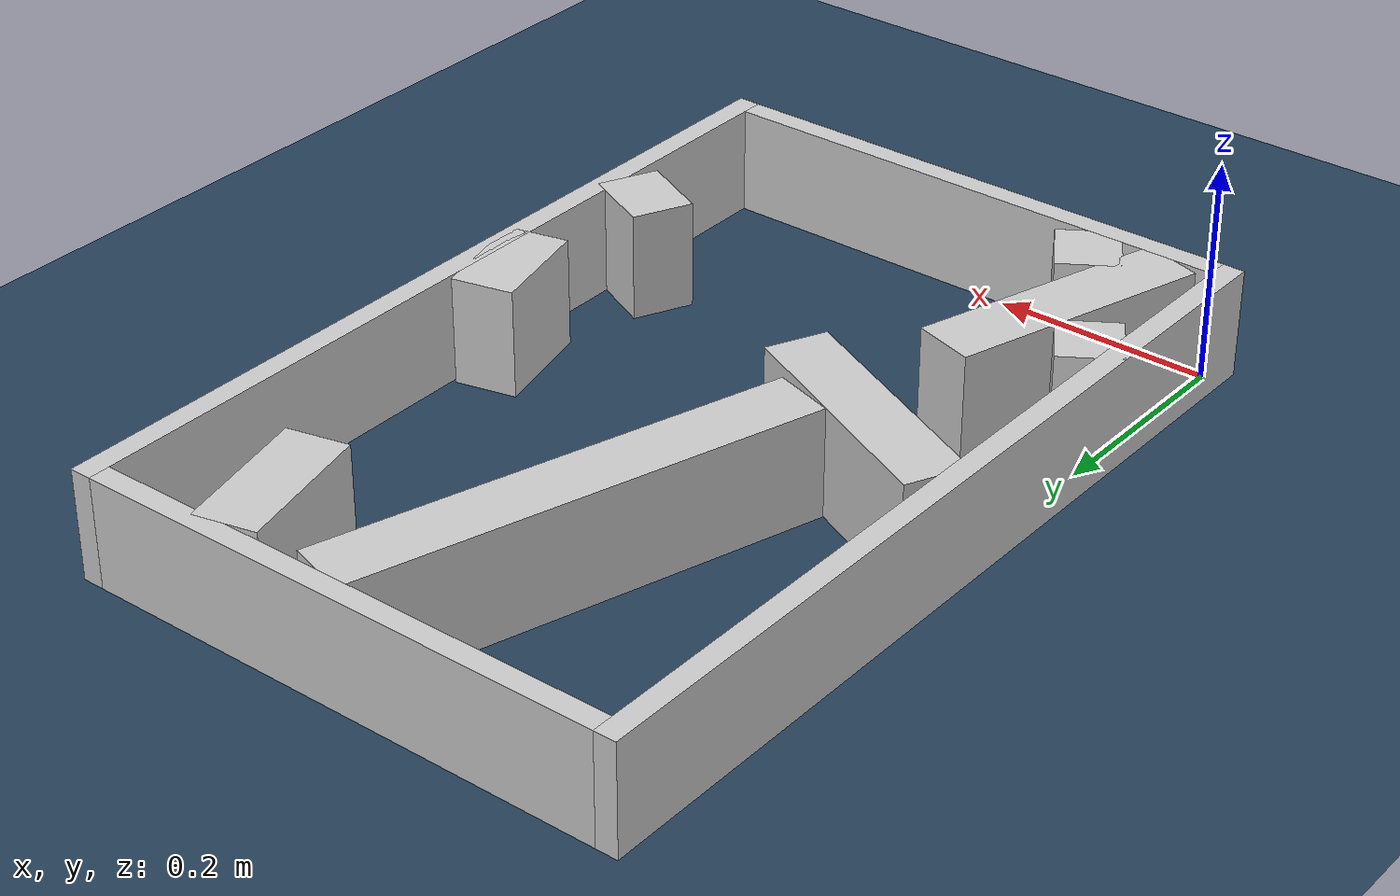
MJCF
<?xml version="1.0" ?>
<mujoco model="generated_real_template">
  <compiler angle="degree"/>
  <option timestep="0.002" integrator="implicitfast" iterations="100" cone="elliptic"/>
  <default>
    <geom density="1"/>
  </default>
  <asset>
    <texture builtin="gradient" height="3072" rgb1="0.3 0.5 0.7" rgb2="0 0 0" type="skybox" width="512"/>
    <texture builtin="checker" height="300" mark="edge" markrgb="0.8 0.8 0.8" name="groundplane" rgb1="0.2 0.3 0.4" rgb2="0.1 0.2 0.3" type="2d" width="300"/>
    <material name="groundplane" reflectance="0.2" texrepeat="5 5" texture="groundplane" texuniform="true"/>
  </asset>
  <worldbody>
    <light dir="0 0 -1" directional="true" pos="0 0 1.5"/>
    <geom name="floor" type="plane" condim="4" friction="0.5 0.005 0.001" material="groundplane" size="0 0 0.05"/>
    <body name="walls">
      <geom name="wall_boundary_left" type="box" condim="4" friction="1.0 0.005 0.0001" rgba="0.8 0.8 0.8 1" pos="-0.010000 0.387500 0.050000" euler="0 0 0.000000" size="0.010000 0.407500 0.050000"/>
      <geom name="wall_boundary_right" type="box" condim="4" friction="1.0 0.005 0.0001" rgba="0.8 0.8 0.8 1" pos="0.500000 0.387500 0.050000" euler="0 0 0.000000" size="0.010000 0.407500 0.050000"/>
      <geom name="wall_boundary_bottom" type="box" condim="4" friction="1.0 0.005 0.0001" rgba="0.8 0.8 0.8 1" pos="0.245000 -0.010000 0.050000" euler="0 0 0.000000" size="0.245000 0.010000 0.050000"/>
      <geom name="wall_boundary_top" type="box" condim="4" friction="1.0 0.005 0.0001" rgba="0.8 0.8 0.8 1" pos="0.245000 0.785000 0.050000" euler="0 0 0.000000" size="0.245000 0.010000 0.050000"/>
      <geom name="wall_inner_1_1" type="box" condim="4" friction="1.0 0.005 0.0001" rgba="0.8 0.8 0.8 1" pos="0.470598 0.346010 0.050000" euler="0 0 103.460955" size="0.050194 0.028500 0.050000"/>
      <geom name="wall_inner_1_2" type="box" condim="4" friction="1.0 0.005 0.0001" rgba="0.8 0.8 0.8 1" pos="0.383282 0.710801 0.050000" euler="0 0 103.460955" size="0.066012 0.028500 0.050000"/>
      <geom name="wall_inner_2_1" type="box" condim="4" friction="1.0 0.005 0.0001" rgba="0.8 0.8 0.8 1" pos="0.458053 0.183119 0.050000" euler="0 0 154.773121" size="0.035315 0.028500 0.050000"/>
      <geom name="wall_inner_2_2" type="box" condim="4" friction="1.0 0.005 0.0001" rgba="0.8 0.8 0.8 1" pos="0.101656 0.351031 0.050000" euler="0 0 154.773121" size="0.112374 0.028500 0.050000"/>
      <geom name="wall_inner_3_1" type="box" condim="4" friction="1.0 0.005 0.0001" rgba="0.8 0.8 0.8 1" pos="0.073054 0.116801 0.050000" euler="0 0 72.991415" size="0.122144 0.028500 0.050000"/>
      <geom name="wall_inner_3_2" type="box" condim="4" friction="1.0 0.005 0.0001" rgba="0.8 0.8 0.8 1" pos="0.211698 0.570043 0.050000" euler="0 0 72.991415" size="0.214331 0.028500 0.050000"/>
      <geom name="wall_inner_4_1" type="box" condim="4" friction="1.0 0.005 0.0001" rgba="0.8 0.8 0.8 1" pos="0.103708 0.025694 0.050000" euler="0 0 122.712689" size="0.030537 0.028500 0.050000"/>
      <geom name="wall_inner_4_2" type="box" condim="4" friction="1.0 0.005 0.0001" rgba="0.8 0.8 0.8 1" pos="0.019912 0.156157 0.050000" euler="0 0 122.712689" size="0.029479 0.028500 0.050000"/>
    </body>
  </worldbody>
</mujoco>
